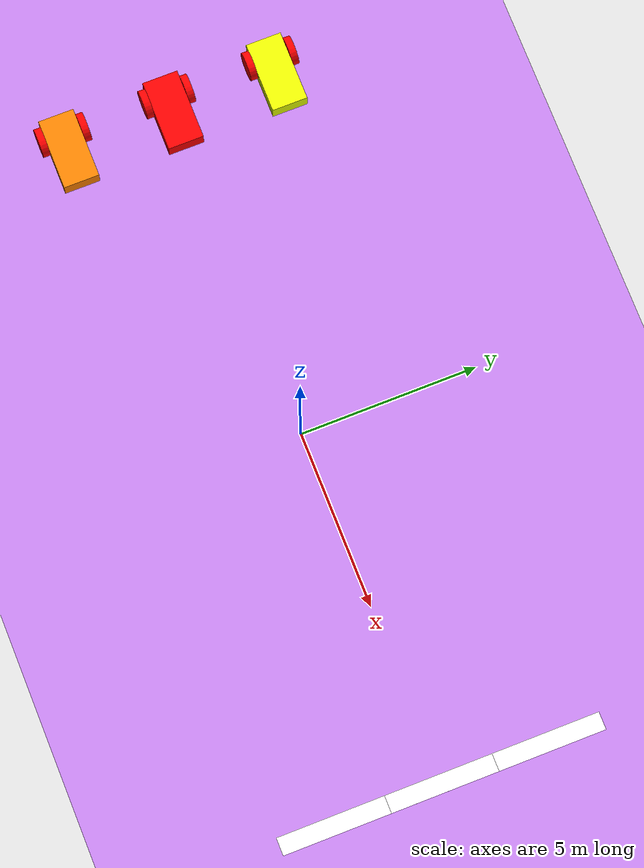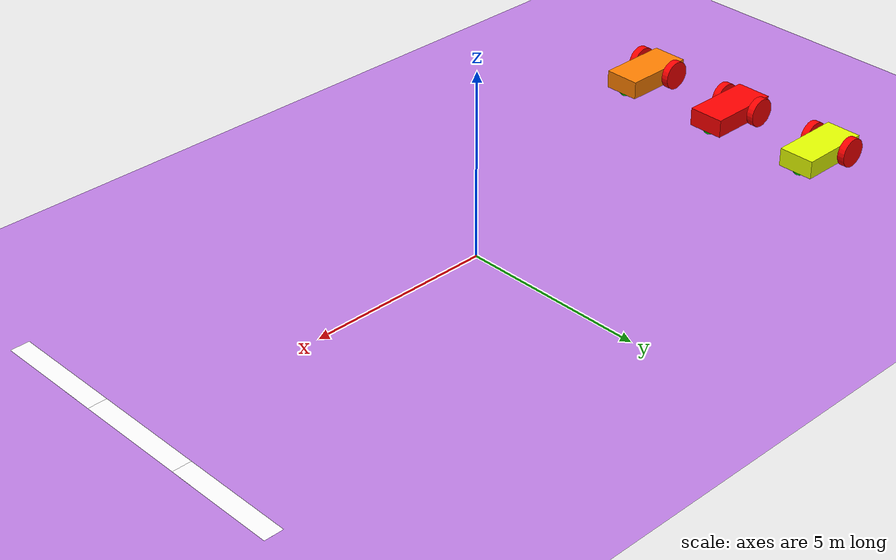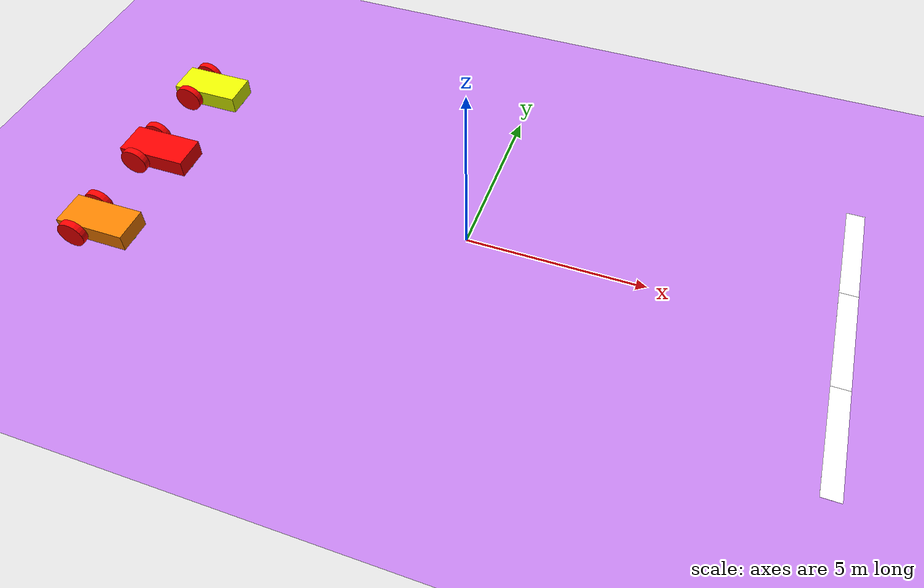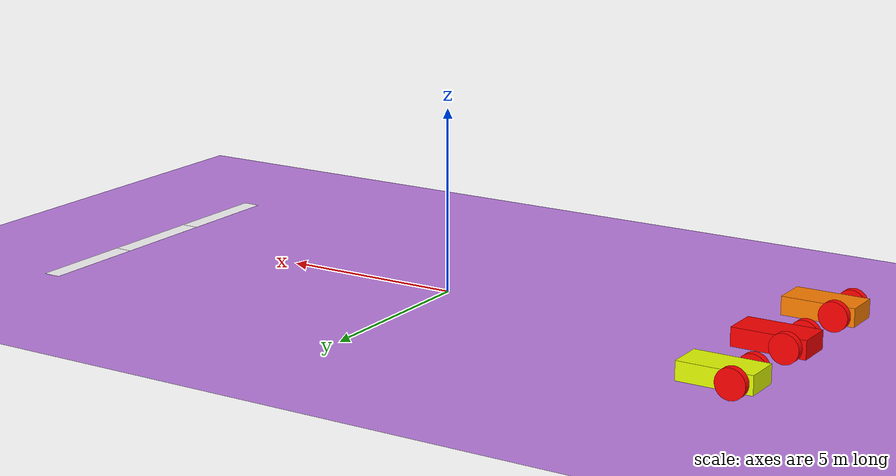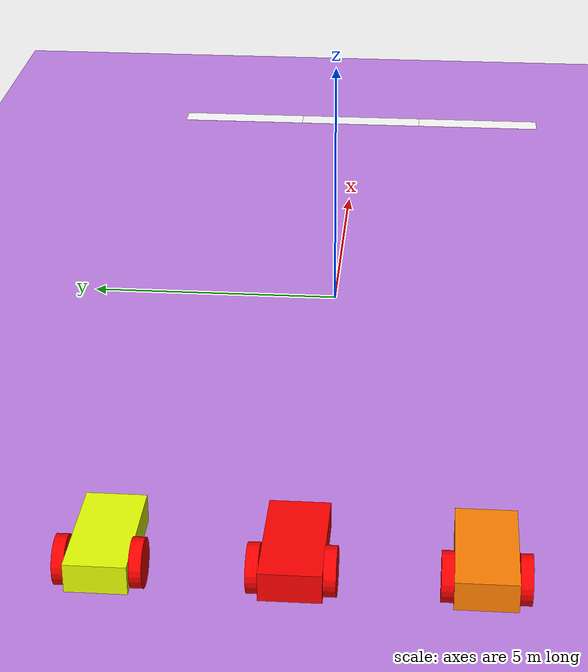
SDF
<sdf version="1.8">
 <world name="Myworld">
  <physics name="1ms" type="ignored">
   <max_step_size>0.001</max_step_size>
   <real_time_factor>1.0</real_time_factor>
  </physics>
  <plugin filename="libignition-gazebo-physics-system.so" name="ignition::gazebo::systems::Physics"/>
  <plugin filename="libignition-gazebo-user-commands-system.so" name="ignition::gazebo::systems::UserCommands"/>
  <plugin filename="libignition-gazebo-scene-broadcaster-system.so" name="ignition::gazebo::systems::SceneBroadcaster"/>
  <plugin filename="libignition-gazebo-sensors-system.so" name="ignition::gazebo::systems::Sensors"/>
  <plugin filename="gz-sim-contact-system" name="gz::sim::systems::Contact"/>
  <light type="directional" name="sun">
   <pose>0 0 10 0 0 0</pose>
   <diffuse>0.8 0.8 0.8 1</diffuse>
   <specular>0.2 0.2 0.2 1</specular>
   <attenuation>
    <range>1000</range>
    <constant>0.9</constant>
    <linear>0.01</linear>
    <quadratic>0.001</quadratic>
   </attenuation>
   <direction>-0.5 0.1 -0.9</direction>
  </light>
  <model name="ground_plane">
   <static>true</static>
   <link name="link">
    <collision name="collision"><geometry><plane><normal>0 0 1</normal></plane></geometry></collision>
    <visual name="visual">
     <geometry><plane><normal>0 0 1</normal><size>30 15</size></plane></geometry>
     <material>
      <ambient>0.75 0.5 0.9 1</ambient>
      <diffuse>0.75 0.5 0.9 1</diffuse>
      <specular>0.75 0.0.5 0.9 1</specular>
     </material>
    </visual>
   </link>
  </model>
  <model name="vehicle_1" canonical_link="chassis">
   <pose relative_to="world">-10 0 0 0 0 0</pose>
   <link name="chassis">
    <pose relative_to="__model__">0.5 0 0.4 0 0 0</pose>
    <inertial>
     <mass>1.14395</mass>
     <inertia>
      <ixx>0.095329</ixx>
      <ixy>0</ixy>
      <ixz>0</ixz>
      <iyy>0.381317</iyy>
      <iyz>0</iyz>
      <izz>0.476646</izz>
     </inertia>
    </inertial>
    <visual name="visual">
     <geometry><box><size>2.0 1.0 0.5</size></box></geometry>
     <material>
      <ambient>1.0 0.0 0.0 1</ambient>
      <diffuse>1.0 0.0 0.0 1</diffuse>
      <specular>1.0 0.0 0.0 1</specular>
     </material>
    </visual>
    <collision name="collision"><geometry><box><size>2.0 1.0 0.5</size></box></geometry></collision>
   </link>
   <link name="left_wheel">
    <pose relative_to="chassis">-0.5 0.6 0 -1.5707 0 0</pose>
    <inertial>
     <mass>1</mass>
     <inertia><ixx>0.043333</ixx><ixy>0</ixy><ixz>0</ixz><iyy>0.043333</iyy><iyz>0</iyz><izz>0.08</izz></inertia>
    </inertial>
    <visual name="visual">
     <geometry><cylinder><radius>0.4</radius><length>0.2</length></cylinder></geometry>
     <material>
      <ambient>1.0 0.0 0.0 1</ambient>
      <diffuse>1.0 0.0 0.0 1</diffuse>
      <specular>1.0 0.0 0.0 1</specular>
     </material>
    </visual>
    <collision name="collision">
     <geometry><cylinder><radius>0.4</radius><length>0.2</length></cylinder></geometry>
    </collision>
   </link>
   <link name="right_wheel">
    <pose relative_to="chassis">-0.5 -0.6 0 -1.5707 0 0</pose>
    <inertial>
     <mass>1</mass>
     <inertia><ixx>0.043333</ixx><ixy>0</ixy><ixz>0</ixz><iyy>0.043333</iyy><iyz>0</iyz><izz>0.08</izz></inertia>
    </inertial>
    <visual name="visual">
     <geometry><cylinder><radius>0.4</radius><length>0.2</length></cylinder></geometry>
     <material>
      <ambient>1.0 0.0 0.0 1</ambient>
      <diffuse>1.0 0.0 0.0 1</diffuse>
      <specular>1.0 0.0 0.0 1</specular>
     </material>
    </visual>
    <collision name="collision">
     <geometry><cylinder><radius>0.4</radius><length>0.2</length></cylinder></geometry>
    </collision>
   </link>
   <frame name="caster_frame" attached_to="chassis"><pose>0.8 0 -0.2 0 0 0</pose></frame>
   <link name="caster">
    <pose relative_to="caster_frame"/>
    <inertial>
     <mass>1</mass>
     <inertia><ixx>0.016</ixx><ixy>0</ixy><ixz>0</ixz><iyy>0.016</iyy><iyz>0</iyz><izz>0.016</izz></inertia>
    </inertial>
    <visual name="visual">
     <geometry><sphere><radius>0.2</radius></sphere></geometry>
     <material>
      <ambient>0.0 1 0.0 1</ambient>
      <diffuse>0.0 1 0.0 1</diffuse>
      <specular>0.0 1 0.0 1</specular>
     </material>
    </visual>
    <collision name="collision"><geometry><sphere><radius>0.2</radius></sphere></geometry></collision>
   </link>
   <joint name="left_wheel_joint" type="revolute">
    <pose relative_to="left_wheel"/>
    <parent>chassis</parent>
    <child>left_wheel</child>
    <axis>
     <xyz expressed_in="__model__">0 1 0</xyz>
     <limit><lower>-1.79769e+308</lower><upper>1.79769e+308</upper></limit>
    </axis>
   </joint>
   <joint name="right_wheel_joint" type="revolute">
    <pose relative_to="right_wheel"/>
    <parent>chassis</parent>
    <child>right_wheel</child>
    <axis>
     <xyz expressed_in="__model__">0 1 0</xyz>
     <limit><lower>-1.79769e+308</lower><upper>1.79769e+308</upper></limit>
    </axis>
   </joint>
   <joint name="caster_wheel" type="ball"><parent>chassis</parent><child>caster</child></joint>
   <plugin filename="libignition-gazebo-diff-drive-system.so" name="ignition::gazebo::systems::DiffDrive">
    <left_joint>left_wheel_joint</left_joint>
    <right_joint>right_wheel_joint</right_joint>
    <wheel_separation>1.2</wheel_separation>
    <wheel_radius>0.4</wheel_radius>
    <odom_publish_frequency>1</odom_publish_frequency>
   </plugin>
  </model>
  <model name="vehicle_2" canonical_link="chassis">
   <pose relative_to="world">-10 3 0 0 0 0</pose>
   <link name="chassis">
    <pose relative_to="__model__">0.5 0 0.4 0 0 0</pose>
    <inertial>
     <mass>1.14395</mass>
     <inertia>
      <ixx>0.095329</ixx>
      <ixy>0</ixy>
      <ixz>0</ixz>
      <iyy>0.381317</iyy>
      <iyz>0</iyz>
      <izz>0.476646</izz>
     </inertia>
    </inertial>
    <visual name="visual">
     <geometry><box><size>2.0 1.0 0.5</size></box></geometry>
     <material>
      <ambient>0.9 1.0 0.0 1</ambient>
      <diffuse>0.9 1.0 0.0 1</diffuse>
      <specular>0.9 1.0 0.0 1</specular>
     </material>
    </visual>
    <collision name="collision"><geometry><box><size>2.0 1.0 0.5</size></box></geometry></collision>
   </link>
   <link name="left_wheel">
    <pose relative_to="chassis">-0.5 0.6 0 -1.5707 0 0</pose>
    <inertial>
     <mass>1</mass>
     <inertia><ixx>0.043333</ixx><ixy>0</ixy><ixz>0</ixz><iyy>0.043333</iyy><iyz>0</iyz><izz>0.08</izz></inertia>
    </inertial>
    <visual name="visual">
     <geometry><cylinder><radius>0.4</radius><length>0.2</length></cylinder></geometry>
     <material>
      <ambient>1.0 0.0 0.0 1</ambient>
      <diffuse>1.0 0.0 0.0 1</diffuse>
      <specular>1.0 0.0 0.0 1</specular>
     </material>
    </visual>
    <collision name="collision">
     <geometry><cylinder><radius>0.4</radius><length>0.2</length></cylinder></geometry>
    </collision>
   </link>
   <link name="right_wheel">
    <pose relative_to="chassis">-0.5 -0.6 0 -1.5707 0 0</pose>
    <inertial>
     <mass>1</mass>
     <inertia><ixx>0.043333</ixx><ixy>0</ixy><ixz>0</ixz><iyy>0.043333</iyy><iyz>0</iyz><izz>0.08</izz></inertia>
    </inertial>
    <visual name="visual">
     <geometry><cylinder><radius>0.4</radius><length>0.2</length></cylinder></geometry>
     <material>
      <ambient>1.0 0.0 0.0 1</ambient>
      <diffuse>1.0 0.0 0.0 1</diffuse>
      <specular>1.0 0.0 0.0 1</specular>
     </material>
    </visual>
    <collision name="collision">
     <geometry><cylinder><radius>0.4</radius><length>0.2</length></cylinder></geometry>
    </collision>
   </link>
   <frame name="caster_frame" attached_to="chassis"><pose>0.8 0 -0.2 0 0 0</pose></frame>
   <link name="caster">
    <pose relative_to="caster_frame"/>
    <inertial>
     <mass>1</mass>
     <inertia><ixx>0.016</ixx><ixy>0</ixy><ixz>0</ixz><iyy>0.016</iyy><iyz>0</iyz><izz>0.016</izz></inertia>
    </inertial>
    <visual name="visual">
     <geometry><sphere><radius>0.2</radius></sphere></geometry>
     <material>
      <ambient>0.0 1 0.0 1</ambient>
      <diffuse>0.0 1 0.0 1</diffuse>
      <specular>0.0 1 0.0 1</specular>
     </material>
    </visual>
    <collision name="collision"><geometry><sphere><radius>0.2</radius></sphere></geometry></collision>
   </link>
   <joint name="left_wheel_joint" type="revolute">
    <pose relative_to="left_wheel"/>
    <parent>chassis</parent>
    <child>left_wheel</child>
    <axis>
     <xyz expressed_in="__model__">0 1 0</xyz>
     <limit><lower>-1.79769e+308</lower><upper>1.79769e+308</upper></limit>
    </axis>
   </joint>
   <joint name="right_wheel_joint" type="revolute">
    <pose relative_to="right_wheel"/>
    <parent>chassis</parent>
    <child>right_wheel</child>
    <axis>
     <xyz expressed_in="__model__">0 1 0</xyz>
     <limit><lower>-1.79769e+308</lower><upper>1.79769e+308</upper></limit>
    </axis>
   </joint>
   <joint name="caster_wheel" type="ball"><parent>chassis</parent><child>caster</child></joint>
   <plugin filename="libignition-gazebo-diff-drive-system.so" name="ignition::gazebo::systems::DiffDrive">
    <left_joint>left_wheel_joint</left_joint>
    <right_joint>right_wheel_joint</right_joint>
    <wheel_separation>1.2</wheel_separation>
    <wheel_radius>0.4</wheel_radius>
    <odom_publish_frequency>1</odom_publish_frequency>
   </plugin>
  </model>
  <model name="vehicle_3" canonical_link="chassis">
   <pose relative_to="world">-10 -3 0 0 0 0</pose>
   <link name="chassis">
    <pose relative_to="__model__">0.5 0 0.4 0 0 0</pose>
    <inertial>
     <mass>1.14395</mass>
     <inertia>
      <ixx>0.095329</ixx>
      <ixy>0</ixy>
      <ixz>0</ixz>
      <iyy>0.381317</iyy>
      <iyz>0</iyz>
      <izz>0.476646</izz>
     </inertia>
    </inertial>
    <visual name="visual">
     <geometry><box><size>2.0 1.0 0.5</size></box></geometry>
     <material>
      <ambient>1.0 0.5 0.0 1</ambient>
      <diffuse>1.0 0.5 0.0 1</diffuse>
      <specular>1.0 0.5 0.0 1</specular>
     </material>
    </visual>
    <collision name="collision"><geometry><box><size>2.0 1.0 0.5</size></box></geometry></collision>
   </link>
   <link name="left_wheel">
    <pose relative_to="chassis">-0.5 0.6 0 -1.5707 0 0</pose>
    <inertial>
     <mass>1</mass>
     <inertia><ixx>0.043333</ixx><ixy>0</ixy><ixz>0</ixz><iyy>0.043333</iyy><iyz>0</iyz><izz>0.08</izz></inertia>
    </inertial>
    <visual name="visual">
     <geometry><cylinder><radius>0.4</radius><length>0.2</length></cylinder></geometry>
     <material>
      <ambient>1.0 0.0 0.0 1</ambient>
      <diffuse>1.0 0.0 0.0 1</diffuse>
      <specular>1.0 0.0 0.0 1</specular>
     </material>
    </visual>
    <collision name="collision">
     <geometry><cylinder><radius>0.4</radius><length>0.2</length></cylinder></geometry>
    </collision>
   </link>
   <link name="right_wheel">
    <pose relative_to="chassis">-0.5 -0.6 0 -1.5707 0 0</pose>
    <inertial>
     <mass>1</mass>
     <inertia><ixx>0.043333</ixx><ixy>0</ixy><ixz>0</ixz><iyy>0.043333</iyy><iyz>0</iyz><izz>0.08</izz></inertia>
    </inertial>
    <visual name="visual">
     <geometry><cylinder><radius>0.4</radius><length>0.2</length></cylinder></geometry>
     <material>
      <ambient>1.0 0.0 0.0 1</ambient>
      <diffuse>1.0 0.0 0.0 1</diffuse>
      <specular>1.0 0.0 0.0 1</specular>
     </material>
    </visual>
    <collision name="collision">
     <geometry><cylinder><radius>0.4</radius><length>0.2</length></cylinder></geometry>
    </collision>
   </link>
   <frame name="caster_frame" attached_to="chassis"><pose>0.8 0 -0.2 0 0 0</pose></frame>
   <link name="caster">
    <pose relative_to="caster_frame"/>
    <inertial>
     <mass>1</mass>
     <inertia><ixx>0.016</ixx><ixy>0</ixy><ixz>0</ixz><iyy>0.016</iyy><iyz>0</iyz><izz>0.016</izz></inertia>
    </inertial>
    <visual name="visual">
     <geometry><sphere><radius>0.2</radius></sphere></geometry>
     <material>
      <ambient>0.0 1 0.0 1</ambient>
      <diffuse>0.0 1 0.0 1</diffuse>
      <specular>0.0 1 0.0 1</specular>
     </material>
    </visual>
    <collision name="collision"><geometry><sphere><radius>0.2</radius></sphere></geometry></collision>
   </link>
   <joint name="left_wheel_joint" type="revolute">
    <pose relative_to="left_wheel"/>
    <parent>chassis</parent>
    <child>left_wheel</child>
    <axis>
     <xyz expressed_in="__model__">0 1 0</xyz>
     <limit><lower>-1.79769e+308</lower><upper>1.79769e+308</upper></limit>
    </axis>
   </joint>
   <joint name="right_wheel_joint" type="revolute">
    <pose relative_to="right_wheel"/>
    <parent>chassis</parent>
    <child>right_wheel</child>
    <axis>
     <xyz expressed_in="__model__">0 1 0</xyz>
     <limit><lower>-1.79769e+308</lower><upper>1.79769e+308</upper></limit>
    </axis>
   </joint>
   <joint name="caster_wheel" type="ball"><parent>chassis</parent><child>caster</child></joint>
   <plugin filename="libignition-gazebo-diff-drive-system.so" name="ignition::gazebo::systems::DiffDrive">
    <left_joint>left_wheel_joint</left_joint>
    <right_joint>right_wheel_joint</right_joint>
    <wheel_separation>1.2</wheel_separation>
    <wheel_radius>0.4</wheel_radius>
    <odom_publish_frequency>1</odom_publish_frequency>
   </plugin>
  </model>
  <model name="ground_press_lane_1">
   <static>true</static>
   <pose>10 3 0.0001 0 0 0</pose>
   <link name="link">
    <collision name="collision"><geometry><box><size>0.5 3 0.001</size></box></geometry></collision>
    <visual name="visual">
     <geometry><plane><normal>0 0 1</normal><size>0.5 3</size></plane></geometry>
     <material><ambient>1 1 1 1</ambient><diffuse>1 1 1 1</diffuse><specular>1 1 1 1</specular></material>
    </visual>
    <sensor name="sensor_contact" type="contact"><contact><collision>collision</collision></contact></sensor>
   </link>
   <plugin filename="libignition-gazebo-touchplugin-system.so" name="ignition::gazebo::systems::TouchPlugin">
    <target>vehicle_yellow</target>
    <namespace>lane1</namespace>
    <time>0.001</time>
    <enabled>true</enabled>
   </plugin>
  </model>
  <model name="ground_press_lane_2">
   <static>true</static>
   <pose>10 0 0.0001 0 0 0</pose>
   <link name="link">
    <collision name="collision"><geometry><box><size>0.5 3 0.001</size></box></geometry></collision>
    <visual name="visual">
     <geometry><plane><normal>0 0 1</normal><size>0.5 3</size></plane></geometry>
     <material><ambient>1 1 1 1</ambient><diffuse>1 1 1 1</diffuse><specular>1 1 1 1</specular></material>
    </visual>
    <sensor name="sensor_contact" type="contact"><contact><collision>collision</collision></contact></sensor>
   </link>
   <plugin filename="libignition-gazebo-touchplugin-system.so" name="ignition::gazebo::systems::TouchPlugin">
    <target>vehicle_red</target>
    <namespace>lane2</namespace>
    <time>0.001</time>
    <enabled>true</enabled>
   </plugin>
  </model>
  <model name="ground_press_lane_3">
   <static>true</static>
   <pose>10 -3 0.0001 0 0 0</pose>
   <link name="link">
    <collision name="collision"><geometry><box><size>0.5 3 0.001</size></box></geometry></collision>
    <visual name="visual">
     <geometry><plane><normal>0 0 1</normal><size>0.5 3</size></plane></geometry>
     <material><ambient>1 1 1 1</ambient><diffuse>1 1 1 1</diffuse><specular>1 1 1 1</specular></material>
    </visual>
    <sensor name="sensor_contact" type="contact"><contact><collision>collision</collision></contact></sensor>
   </link>
   <plugin filename="libignition-gazebo-touchplugin-system.so" name="ignition::gazebo::systems::TouchPlugin">
    <target>vehicle_orange</target>
    <namespace>lane3</namespace>
    <time>0.001</time>
    <enabled>true</enabled>
   </plugin>
  </model>
 </world>
</sdf>
